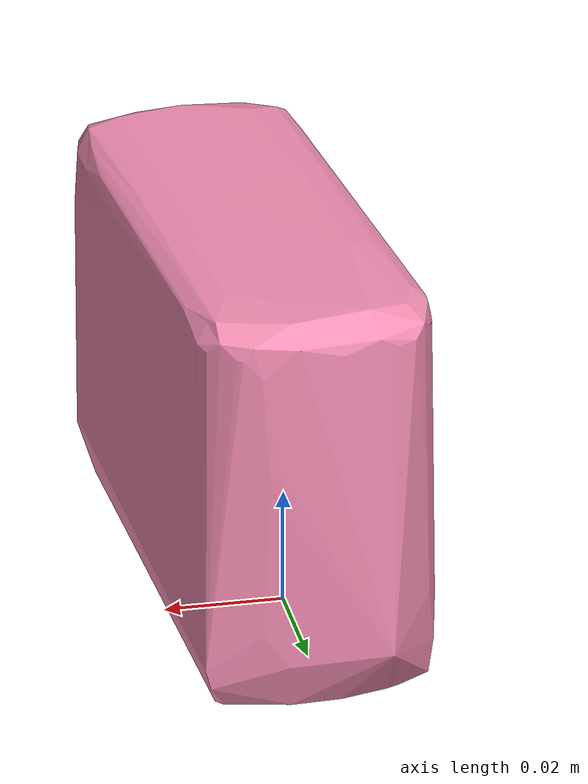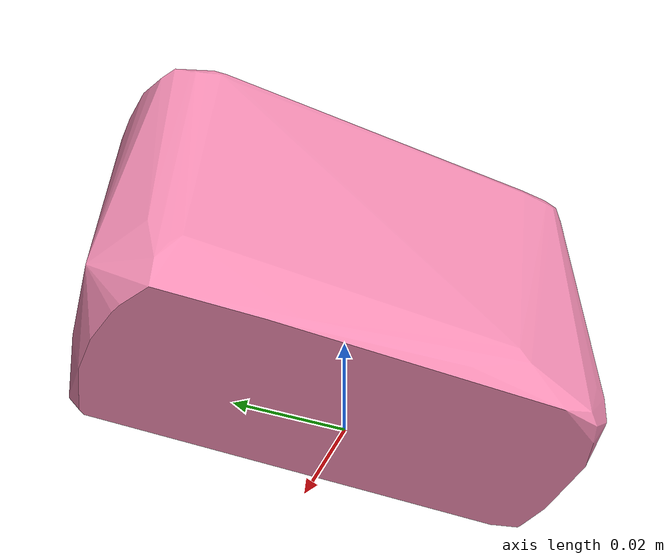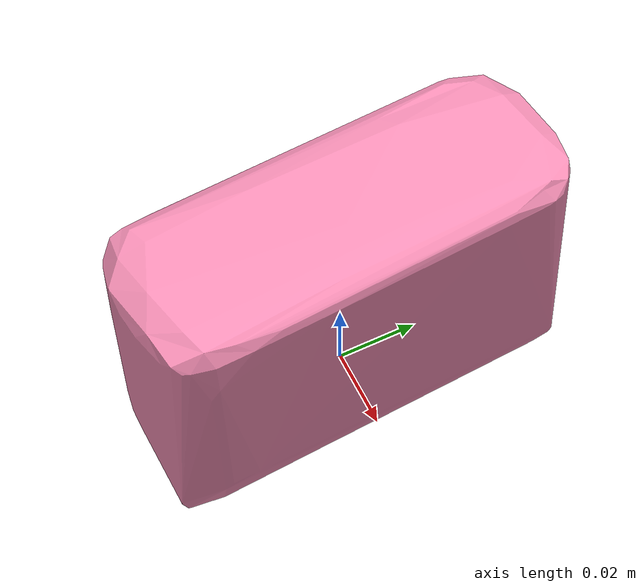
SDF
<?xml version='1.0'?>
<sdf version="1.4">
  <model name="dove_pink">
    <static>false</static>
    <link name="link">
      <inertial>
        <pose>0.0055057937320406895 -0.0018367352012928697 0.03745743481344723 1.5585426446176351 0.004338791726585376 -3.0593857864961063</pose>
        <mass>0.031319212645646875</mass>
        <inertia>
          <ixx>3.6919303753347e-05</ixx>
          <ixy>-3.8066758974866425e-23</ixy>
          <ixz>-1.4046995488730587e-21</ixz>
          <iyy>3.19029069217335e-05</iyy>
          <iyz>5.406916573218059e-23</iyz>
          <izz>1.6505812746411708e-05</izz>
        </inertia>
      </inertial>
      <collision name="collision">
        <geometry>
          <mesh>
            <!-- Use a downsampled mesh for collisions -->
            <uri>model:///dove_pink/dove_pink_250_collision.obj</uri>
	        </mesh>
        </geometry>
        <surface>
      </surface>
      </collision>
      <visual name="visual">
        <geometry>
          <mesh>
            <uri>model:///dove_pink/optimized_tsdf_texture_mapped_mesh.obj</uri>
	        </mesh>
        </geometry>
        <material>
          <script>
            <uri>model:///dove_pink/dove_pink.material</uri>
            <name>dove_pink</name>
          </script>
        </material>
      </visual>
    </link>
  </model>
</sdf>
